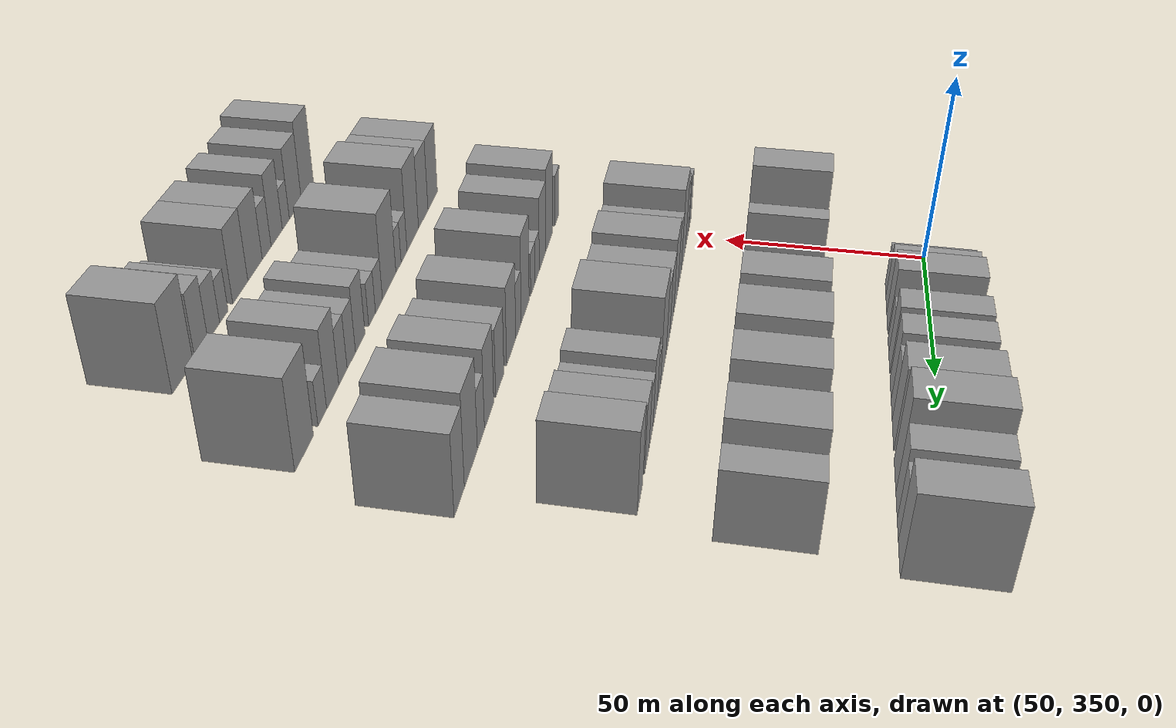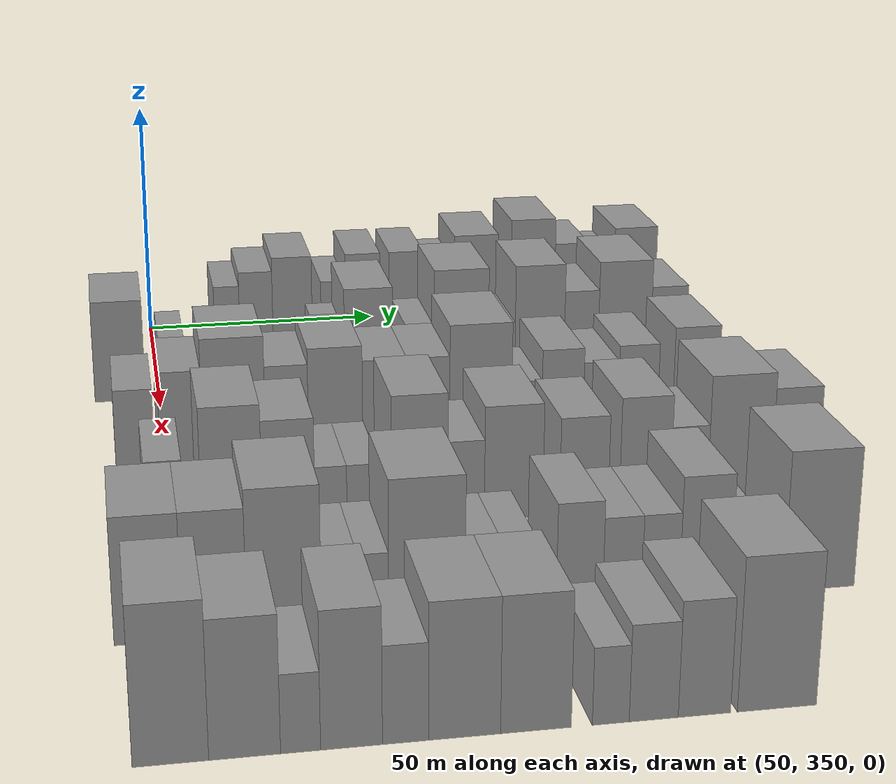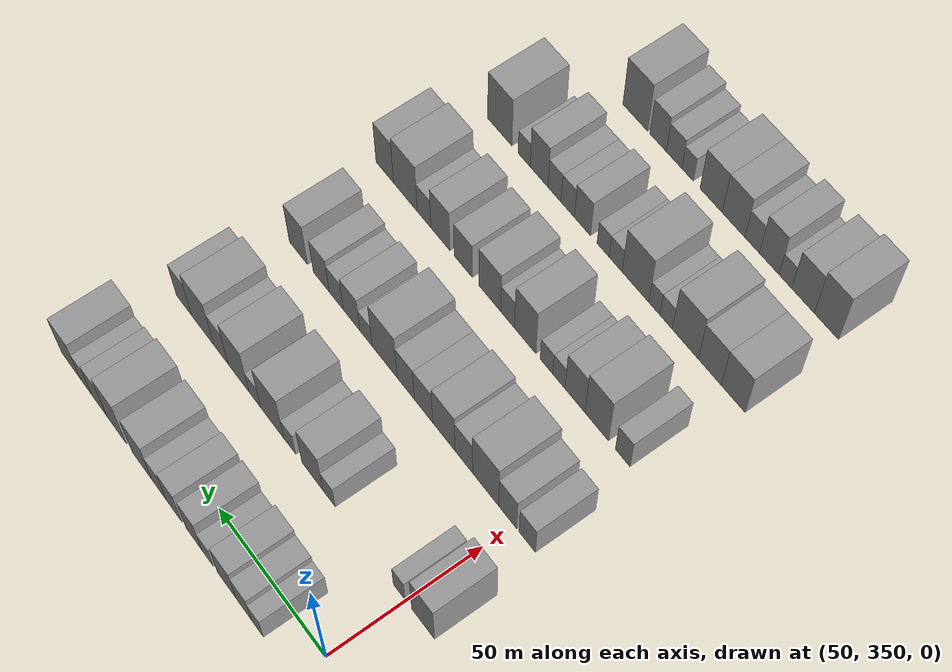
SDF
<sdf version="1.6">
 <world name="default">
  <model name="building_95">
   <static>1</static>
   <pose>50.0000 366.4591 0 0.000000 0.000000 0.000000</pose>
   <link name="link">
    <pose>0 0 6.00 0 0 0</pose>
    <collision name="collision"><geometry><box><size>20.0000 5.5603 12.0000</size></box></geometry></collision>
    <visual name="visual">
     <cast_shadows>0</cast_shadows>
     <geometry><box><size>20.0000 5.5603 12.0000</size></box></geometry>
     <material>
      <script>
       <uri>model://grey_wall/materials/scripts</uri>
       <uri>model://grey_wall/materials/textures</uri>
       <name>vrc/grey_wall</name>
      </script>
     </material>
    </visual>
   </link>
  </model>
  <model name="building_96">
   <static>1</static>
   <pose>50.0000 372.9082 0 0.000000 0.000000 0.000000</pose>
   <link name="link">
    <pose>0 0 7.50 0 0 0</pose>
    <collision name="collision"><geometry><box><size>20.0000 7.3380 15.0000</size></box></geometry></collision>
    <visual name="visual">
     <cast_shadows>0</cast_shadows>
     <geometry><box><size>20.0000 7.3380 15.0000</size></box></geometry>
     <material>
      <script>
       <uri>model://grey_wall/materials/scripts</uri>
       <uri>model://grey_wall/materials/textures</uri>
       <name>vrc/grey_wall</name>
      </script>
     </material>
    </visual>
   </link>
  </model>
  <model name="building_97">
   <static>1</static>
   <pose>50.0000 380.9522 0 0.000000 0.000000 0.000000</pose>
   <link name="link">
    <pose>0 0 9.00 0 0 0</pose>
    <collision name="collision"><geometry><box><size>20.0000 8.7500 18.0000</size></box></geometry></collision>
    <visual name="visual">
     <cast_shadows>0</cast_shadows>
     <geometry><box><size>20.0000 8.7500 18.0000</size></box></geometry>
     <material>
      <script>
       <uri>model://grey_wall/materials/scripts</uri>
       <uri>model://grey_wall/materials/textures</uri>
       <name>vrc/grey_wall</name>
      </script>
     </material>
    </visual>
   </link>
  </model>
  <model name="building_98">
   <static>1</static>
   <pose>50.0000 390.0911 0 0.000000 0.000000 0.000000</pose>
   <link name="link">
    <pose>0 0 6.00 0 0 0</pose>
    <collision name="collision"><geometry><box><size>20.0000 5.5277 12.0000</size></box></geometry></collision>
    <visual name="visual">
     <cast_shadows>0</cast_shadows>
     <geometry><box><size>20.0000 5.5277 12.0000</size></box></geometry>
     <material>
      <script>
       <uri>model://grey_wall/materials/scripts</uri>
       <uri>model://grey_wall/materials/textures</uri>
       <name>vrc/grey_wall</name>
      </script>
     </material>
    </visual>
   </link>
  </model>
  <model name="building_99">
   <static>1</static>
   <pose>50.0000 396.7449 0 0.000000 0.000000 0.000000</pose>
   <link name="link">
    <pose>0 0 9.00 0 0 0</pose>
    <collision name="collision"><geometry><box><size>20.0000 7.7799 18.0000</size></box></geometry></collision>
    <visual name="visual">
     <cast_shadows>0</cast_shadows>
     <geometry><box><size>20.0000 7.7799 18.0000</size></box></geometry>
     <material>
      <script>
       <uri>model://grey_wall/materials/scripts</uri>
       <uri>model://grey_wall/materials/textures</uri>
       <name>vrc/grey_wall</name>
      </script>
     </material>
    </visual>
   </link>
  </model>
  <model name="building_100">
   <static>1</static>
   <pose>50.0000 406.5369 0 0.000000 0.000000 0.000000</pose>
   <link name="link">
    <pose>0 0 9.00 0 0 0</pose>
    <collision name="collision"><geometry><box><size>20.0000 7.8041 18.0000</size></box></geometry></collision>
    <visual name="visual">
     <cast_shadows>0</cast_shadows>
     <geometry><box><size>20.0000 7.8041 18.0000</size></box></geometry>
     <material>
      <script>
       <uri>model://grey_wall/materials/scripts</uri>
       <uri>model://grey_wall/materials/textures</uri>
       <name>vrc/grey_wall</name>
      </script>
     </material>
    </visual>
   </link>
  </model>
  <model name="building_101">
   <static>1</static>
   <pose>50.0000 413.9304 0 0.000000 0.000000 0.000000</pose>
   <link name="link">
    <pose>0 0 7.50 0 0 0</pose>
    <collision name="collision"><geometry><box><size>20.0000 6.9829 15.0000</size></box></geometry></collision>
    <visual name="visual">
     <cast_shadows>0</cast_shadows>
     <geometry><box><size>20.0000 6.9829 15.0000</size></box></geometry>
     <material>
      <script>
       <uri>model://grey_wall/materials/scripts</uri>
       <uri>model://grey_wall/materials/textures</uri>
       <name>vrc/grey_wall</name>
      </script>
     </material>
    </visual>
   </link>
  </model>
  <model name="building_102">
   <static>1</static>
   <pose>50.0000 422.4146 0 0.000000 0.000000 0.000000</pose>
   <link name="link">
    <pose>0 0 10.50 0 0 0</pose>
    <collision name="collision"><geometry><box><size>20.0000 9.9854 21.0000</size></box></geometry></collision>
    <visual name="visual">
     <cast_shadows>0</cast_shadows>
     <geometry><box><size>20.0000 9.9854 21.0000</size></box></geometry>
     <material>
      <script>
       <uri>model://grey_wall/materials/scripts</uri>
       <uri>model://grey_wall/materials/textures</uri>
       <name>vrc/grey_wall</name>
      </script>
     </material>
    </visual>
   </link>
  </model>
  <model name="building_103">
   <static>1</static>
   <pose>50.0000 435.4691 0 0.000000 0.000000 0.000000</pose>
   <link name="link">
    <pose>0 0 12.00 0 0 0</pose>
    <collision name="collision"><geometry><box><size>20.0000 10.1235 24.0000</size></box></geometry></collision>
    <visual name="visual">
     <cast_shadows>0</cast_shadows>
     <geometry><box><size>20.0000 10.1235 24.0000</size></box></geometry>
     <material>
      <script>
       <uri>model://grey_wall/materials/scripts</uri>
       <uri>model://grey_wall/materials/textures</uri>
       <name>vrc/grey_wall</name>
      </script>
     </material>
    </visual>
   </link>
  </model>
  <model name="building_104">
   <static>1</static>
   <pose>50.0000 444.4349 0 0.000000 0.000000 0.000000</pose>
   <link name="link">
    <pose>0 0 9.00 0 0 0</pose>
    <collision name="collision"><geometry><box><size>20.0000 7.8082 18.0000</size></box></geometry></collision>
    <visual name="visual">
     <cast_shadows>0</cast_shadows>
     <geometry><box><size>20.0000 7.8082 18.0000</size></box></geometry>
     <material>
      <script>
       <uri>model://grey_wall/materials/scripts</uri>
       <uri>model://grey_wall/materials/textures</uri>
       <name>vrc/grey_wall</name>
      </script>
     </material>
    </visual>
   </link>
  </model>
  <model name="building_105">
   <static>1</static>
   <pose>50.0000 451.3470 0 0.000000 0.000000 0.000000</pose>
   <link name="link">
    <pose>0 0 7.50 0 0 0</pose>
    <collision name="collision"><geometry><box><size>20.0000 6.0160 15.0000</size></box></geometry></collision>
    <visual name="visual">
     <cast_shadows>0</cast_shadows>
     <geometry><box><size>20.0000 6.0160 15.0000</size></box></geometry>
     <material>
      <script>
       <uri>model://grey_wall/materials/scripts</uri>
       <uri>model://grey_wall/materials/textures</uri>
       <name>vrc/grey_wall</name>
      </script>
     </material>
    </visual>
   </link>
  </model>
  <model name="building_106">
   <static>1</static>
   <pose>50.0000 459.2782 0 0.000000 0.000000 0.000000</pose>
   <link name="link">
    <pose>0 0 10.50 0 0 0</pose>
    <collision name="collision"><geometry><box><size>20.0000 9.8463 21.0000</size></box></geometry></collision>
    <visual name="visual">
     <cast_shadows>0</cast_shadows>
     <geometry><box><size>20.0000 9.8463 21.0000</size></box></geometry>
     <material>
      <script>
       <uri>model://grey_wall/materials/scripts</uri>
       <uri>model://grey_wall/materials/textures</uri>
       <name>vrc/grey_wall</name>
      </script>
     </material>
    </visual>
   </link>
  </model>
  <model name="building_219">
   <static>1</static>
   <pose>85.0000 342.2260 0 0.000000 0.000000 0.000000</pose>
   <link name="link">
    <pose>0 0 10.50 0 0 0</pose>
    <collision name="collision"><geometry><box><size>20.0000 10.0791 21.0000</size></box></geometry></collision>
    <visual name="visual">
     <cast_shadows>0</cast_shadows>
     <geometry><box><size>20.0000 10.0791 21.0000</size></box></geometry>
     <material>
      <script>
       <uri>model://grey_wall/materials/scripts</uri>
       <uri>model://grey_wall/materials/textures</uri>
       <name>vrc/grey_wall</name>
      </script>
     </material>
    </visual>
   </link>
  </model>
  <model name="building_220">
   <static>1</static>
   <pose>85.0000 352.8619 0 0.000000 0.000000 0.000000</pose>
   <link name="link">
    <pose>0 0 6.00 0 0 0</pose>
    <collision name="collision"><geometry><box><size>20.0000 5.1927 12.0000</size></box></geometry></collision>
    <visual name="visual">
     <cast_shadows>0</cast_shadows>
     <geometry><box><size>20.0000 5.1927 12.0000</size></box></geometry>
     <material>
      <script>
       <uri>model://grey_wall/materials/scripts</uri>
       <uri>model://grey_wall/materials/textures</uri>
       <name>vrc/grey_wall</name>
      </script>
     </material>
    </visual>
   </link>
  </model>
  <model name="building_221">
   <static>1</static>
   <pose>85.0000 385.0509 0 0.000000 0.000000 0.000000</pose>
   <link name="link">
    <pose>0 0 6.00 0 0 0</pose>
    <collision name="collision"><geometry><box><size>20.0000 5.7285 12.0000</size></box></geometry></collision>
    <visual name="visual">
     <cast_shadows>0</cast_shadows>
     <geometry><box><size>20.0000 5.7285 12.0000</size></box></geometry>
     <material>
      <script>
       <uri>model://grey_wall/materials/scripts</uri>
       <uri>model://grey_wall/materials/textures</uri>
       <name>vrc/grey_wall</name>
      </script>
     </material>
    </visual>
   </link>
  </model>
  <model name="building_222">
   <static>1</static>
   <pose>85.0000 392.8998 0 0.000000 0.000000 0.000000</pose>
   <link name="link">
    <pose>0 0 10.50 0 0 0</pose>
    <collision name="collision"><geometry><box><size>20.0000 9.9693 21.0000</size></box></geometry></collision>
    <visual name="visual">
     <cast_shadows>0</cast_shadows>
     <geometry><box><size>20.0000 9.9693 21.0000</size></box></geometry>
     <material>
      <script>
       <uri>model://grey_wall/materials/scripts</uri>
       <uri>model://grey_wall/materials/textures</uri>
       <name>vrc/grey_wall</name>
      </script>
     </material>
    </visual>
   </link>
  </model>
  <model name="building_223">
   <static>1</static>
   <pose>85.0000 403.7340 0 0.000000 0.000000 0.000000</pose>
   <link name="link">
    <pose>0 0 6.00 0 0 0</pose>
    <collision name="collision"><geometry><box><size>20.0000 5.6991 12.0000</size></box></geometry></collision>
    <visual name="visual">
     <cast_shadows>0</cast_shadows>
     <geometry><box><size>20.0000 5.6991 12.0000</size></box></geometry>
     <material>
      <script>
       <uri>model://grey_wall/materials/scripts</uri>
       <uri>model://grey_wall/materials/textures</uri>
       <name>vrc/grey_wall</name>
      </script>
     </material>
    </visual>
   </link>
  </model>
  <model name="building_224">
   <static>1</static>
   <pose>85.0000 412.2880 0 0.000000 0.000000 0.000000</pose>
   <link name="link">
    <pose>0 0 12.00 0 0 0</pose>
    <collision name="collision"><geometry><box><size>20.0000 11.4088 24.0000</size></box></geometry></collision>
    <visual name="visual">
     <cast_shadows>0</cast_shadows>
     <geometry><box><size>20.0000 11.4088 24.0000</size></box></geometry>
     <material>
      <script>
       <uri>model://grey_wall/materials/scripts</uri>
       <uri>model://grey_wall/materials/textures</uri>
       <name>vrc/grey_wall</name>
      </script>
     </material>
    </visual>
   </link>
  </model>
  <model name="building_225">
   <static>1</static>
   <pose>85.0000 420.8090 0 0.000000 0.000000 0.000000</pose>
   <link name="link">
    <pose>0 0 6.00 0 0 0</pose>
    <collision name="collision"><geometry><box><size>20.0000 5.6333 12.0000</size></box></geometry></collision>
    <visual name="visual">
     <cast_shadows>0</cast_shadows>
     <geometry><box><size>20.0000 5.6333 12.0000</size></box></geometry>
     <material>
      <script>
       <uri>model://grey_wall/materials/scripts</uri>
       <uri>model://grey_wall/materials/textures</uri>
       <name>vrc/grey_wall</name>
      </script>
     </material>
    </visual>
   </link>
  </model>
  <model name="building_226">
   <static>1</static>
   <pose>85.0000 428.8938 0 0.000000 0.000000 0.000000</pose>
   <link name="link">
    <pose>0 0 12.00 0 0 0</pose>
    <collision name="collision"><geometry><box><size>20.0000 10.5362 24.0000</size></box></geometry></collision>
    <visual name="visual">
     <cast_shadows>0</cast_shadows>
     <geometry><box><size>20.0000 10.5362 24.0000</size></box></geometry>
     <material>
      <script>
       <uri>model://grey_wall/materials/scripts</uri>
       <uri>model://grey_wall/materials/textures</uri>
       <name>vrc/grey_wall</name>
      </script>
     </material>
    </visual>
   </link>
  </model>
  <model name="building_227">
   <static>1</static>
   <pose>85.0000 437.8114 0 0.000000 0.000000 0.000000</pose>
   <link name="link">
    <pose>0 0 9.00 0 0 0</pose>
    <collision name="collision"><geometry><box><size>20.0000 7.2992 18.0000</size></box></geometry></collision>
    <visual name="visual">
     <cast_shadows>0</cast_shadows>
     <geometry><box><size>20.0000 7.2992 18.0000</size></box></geometry>
     <material>
      <script>
       <uri>model://grey_wall/materials/scripts</uri>
       <uri>model://grey_wall/materials/textures</uri>
       <name>vrc/grey_wall</name>
      </script>
     </material>
    </visual>
   </link>
  </model>
  <model name="building_228">
   <static>1</static>
   <pose>85.0000 447.1534 0 0.000000 0.000000 0.000000</pose>
   <link name="link">
    <pose>0 0 12.00 0 0 0</pose>
    <collision name="collision"><geometry><box><size>20.0000 11.3847 24.0000</size></box></geometry></collision>
    <visual name="visual">
     <cast_shadows>0</cast_shadows>
     <geometry><box><size>20.0000 11.3847 24.0000</size></box></geometry>
     <material>
      <script>
       <uri>model://grey_wall/materials/scripts</uri>
       <uri>model://grey_wall/materials/textures</uri>
       <name>vrc/grey_wall</name>
      </script>
     </material>
    </visual>
   </link>
  </model>
  <model name="building_229">
   <static>1</static>
   <pose>85.0000 456.7646 0 0.000000 0.000000 0.000000</pose>
   <link name="link">
    <pose>0 0 9.00 0 0 0</pose>
    <collision name="collision"><geometry><box><size>20.0000 7.8378 18.0000</size></box></geometry></collision>
    <visual name="visual">
     <cast_shadows>0</cast_shadows>
     <geometry><box><size>20.0000 7.8378 18.0000</size></box></geometry>
     <material>
      <script>
       <uri>model://grey_wall/materials/scripts</uri>
       <uri>model://grey_wall/materials/textures</uri>
       <name>vrc/grey_wall</name>
      </script>
     </material>
    </visual>
   </link>
  </model>
  <model name="building_340">
   <static>1</static>
   <pose>120.0000 344.1372 0 0.000000 0.000000 0.000000</pose>
   <link name="link">
    <pose>0 0 7.50 0 0 0</pose>
    <collision name="collision"><geometry><box><size>20.0000 7.1454 15.0000</size></box></geometry></collision>
    <visual name="visual">
     <cast_shadows>0</cast_shadows>
     <geometry><box><size>20.0000 7.1454 15.0000</size></box></geometry>
     <material>
      <script>
       <uri>model://grey_wall/materials/scripts</uri>
       <uri>model://grey_wall/materials/textures</uri>
       <name>vrc/grey_wall</name>
      </script>
     </material>
    </visual>
   </link>
  </model>
  <model name="building_341">
   <static>1</static>
   <pose>120.0000 352.6727 0 0.000000 0.000000 0.000000</pose>
   <link name="link">
    <pose>0 0 9.00 0 0 0</pose>
    <collision name="collision"><geometry><box><size>20.0000 7.9255 18.0000</size></box></geometry></collision>
    <visual name="visual">
     <cast_shadows>0</cast_shadows>
     <geometry><box><size>20.0000 7.9255 18.0000</size></box></geometry>
     <material>
      <script>
       <uri>model://grey_wall/materials/scripts</uri>
       <uri>model://grey_wall/materials/textures</uri>
       <name>vrc/grey_wall</name>
      </script>
     </material>
    </visual>
   </link>
  </model>
  <model name="building_342">
   <static>1</static>
   <pose>120.0000 362.4865 0 0.000000 0.000000 0.000000</pose>
   <link name="link">
    <pose>0 0 12.00 0 0 0</pose>
    <collision name="collision"><geometry><box><size>20.0000 11.7022 24.0000</size></box></geometry></collision>
    <visual name="visual">
     <cast_shadows>0</cast_shadows>
     <geometry><box><size>20.0000 11.7022 24.0000</size></box></geometry>
     <material>
      <script>
       <uri>model://grey_wall/materials/scripts</uri>
       <uri>model://grey_wall/materials/textures</uri>
       <name>vrc/grey_wall</name>
      </script>
     </material>
    </visual>
   </link>
  </model>
  <model name="building_343">
   <static>1</static>
   <pose>120.0000 372.3522 0 0.000000 0.000000 0.000000</pose>
   <link name="link">
    <pose>0 0 9.00 0 0 0</pose>
    <collision name="collision"><geometry><box><size>20.0000 8.0290 18.0000</size></box></geometry></collision>
    <visual name="visual">
     <cast_shadows>0</cast_shadows>
     <geometry><box><size>20.0000 8.0290 18.0000</size></box></geometry>
     <material>
      <script>
       <uri>model://grey_wall/materials/scripts</uri>
       <uri>model://grey_wall/materials/textures</uri>
       <name>vrc/grey_wall</name>
      </script>
     </material>
    </visual>
   </link>
  </model>
  <model name="building_344">
   <static>1</static>
   <pose>120.0000 381.4960 0 0.000000 0.000000 0.000000</pose>
   <link name="link">
    <pose>0 0 10.50 0 0 0</pose>
    <collision name="collision"><geometry><box><size>20.0000 10.2587 21.0000</size></box></geometry></collision>
    <visual name="visual">
     <cast_shadows>0</cast_shadows>
     <geometry><box><size>20.0000 10.2587 21.0000</size></box></geometry>
     <material>
      <script>
       <uri>model://grey_wall/materials/scripts</uri>
       <uri>model://grey_wall/materials/textures</uri>
       <name>vrc/grey_wall</name>
      </script>
     </material>
    </visual>
   </link>
  </model>
  <model name="building_345">
   <static>1</static>
   <pose>120.0000 390.8699 0 0.000000 0.000000 0.000000</pose>
   <link name="link">
    <pose>0 0 9.00 0 0 0</pose>
    <collision name="collision"><geometry><box><size>20.0000 8.4892 18.0000</size></box></geometry></collision>
    <visual name="visual">
     <cast_shadows>0</cast_shadows>
     <geometry><box><size>20.0000 8.4892 18.0000</size></box></geometry>
     <material>
      <script>
       <uri>model://grey_wall/materials/scripts</uri>
       <uri>model://grey_wall/materials/textures</uri>
       <name>vrc/grey_wall</name>
      </script>
     </material>
    </visual>
   </link>
  </model>
  <model name="building_346">
   <static>1</static>
   <pose>120.0000 399.1827 0 0.000000 0.000000 0.000000</pose>
   <link name="link">
    <pose>0 0 9.00 0 0 0</pose>
    <collision name="collision"><geometry><box><size>20.0000 8.1363 18.0000</size></box></geometry></collision>
    <visual name="visual">
     <cast_shadows>0</cast_shadows>
     <geometry><box><size>20.0000 8.1363 18.0000</size></box></geometry>
     <material>
      <script>
       <uri>model://grey_wall/materials/scripts</uri>
       <uri>model://grey_wall/materials/textures</uri>
       <name>vrc/grey_wall</name>
      </script>
     </material>
    </visual>
   </link>
  </model>
  <model name="building_347">
   <static>1</static>
   <pose>120.0000 409.2458 0 0.000000 0.000000 0.000000</pose>
   <link name="link">
    <pose>0 0 12.00 0 0 0</pose>
    <collision name="collision"><geometry><box><size>20.0000 11.9900 24.0000</size></box></geometry></collision>
    <visual name="visual">
     <cast_shadows>0</cast_shadows>
     <geometry><box><size>20.0000 11.9900 24.0000</size></box></geometry>
     <material>
      <script>
       <uri>model://grey_wall/materials/scripts</uri>
       <uri>model://grey_wall/materials/textures</uri>
       <name>vrc/grey_wall</name>
      </script>
     </material>
    </visual>
   </link>
  </model>
  <model name="building_348">
   <static>1</static>
   <pose>120.0000 418.1834 0 0.000000 0.000000 0.000000</pose>
   <link name="link">
    <pose>0 0 6.00 0 0 0</pose>
    <collision name="collision"><geometry><box><size>20.0000 5.8854 12.0000</size></box></geometry></collision>
    <visual name="visual">
     <cast_shadows>0</cast_shadows>
     <geometry><box><size>20.0000 5.8854 12.0000</size></box></geometry>
     <material>
      <script>
       <uri>model://grey_wall/materials/scripts</uri>
       <uri>model://grey_wall/materials/textures</uri>
       <name>vrc/grey_wall</name>
      </script>
     </material>
    </visual>
   </link>
  </model>
  <model name="building_349">
   <static>1</static>
   <pose>120.0000 425.2033 0 0.000000 0.000000 0.000000</pose>
   <link name="link">
    <pose>0 0 9.00 0 0 0</pose>
    <collision name="collision"><geometry><box><size>20.0000 8.1543 18.0000</size></box></geometry></collision>
    <visual name="visual">
     <cast_shadows>0</cast_shadows>
     <geometry><box><size>20.0000 8.1543 18.0000</size></box></geometry>
     <material>
      <script>
       <uri>model://grey_wall/materials/scripts</uri>
       <uri>model://grey_wall/materials/textures</uri>
       <name>vrc/grey_wall</name>
      </script>
     </material>
    </visual>
   </link>
  </model>
  <model name="building_350">
   <static>1</static>
   <pose>120.0000 432.7325 0 0.000000 0.000000 0.000000</pose>
   <link name="link">
    <pose>0 0 7.50 0 0 0</pose>
    <collision name="collision"><geometry><box><size>20.0000 6.9041 15.0000</size></box></geometry></collision>
    <visual name="visual">
     <cast_shadows>0</cast_shadows>
     <geometry><box><size>20.0000 6.9041 15.0000</size></box></geometry>
     <material>
      <script>
       <uri>model://grey_wall/materials/scripts</uri>
       <uri>model://grey_wall/materials/textures</uri>
       <name>vrc/grey_wall</name>
      </script>
     </material>
    </visual>
   </link>
  </model>
  <model name="building_351">
   <static>1</static>
   <pose>120.0000 440.1216 0 0.000000 0.000000 0.000000</pose>
   <link name="link">
    <pose>0 0 9.00 0 0 0</pose>
    <collision name="collision"><geometry><box><size>20.0000 7.8741 18.0000</size></box></geometry></collision>
    <visual name="visual">
     <cast_shadows>0</cast_shadows>
     <geometry><box><size>20.0000 7.8741 18.0000</size></box></geometry>
     <material>
      <script>
       <uri>model://grey_wall/materials/scripts</uri>
       <uri>model://grey_wall/materials/textures</uri>
       <name>vrc/grey_wall</name>
      </script>
     </material>
    </visual>
   </link>
  </model>
  <model name="building_352">
   <static>1</static>
   <pose>120.0000 451.6036 0 0.000000 0.000000 0.000000</pose>
   <link name="link">
    <pose>0 0 10.50 0 0 0</pose>
    <collision name="collision"><geometry><box><size>20.0000 9.0899 21.0000</size></box></geometry></collision>
    <visual name="visual">
     <cast_shadows>0</cast_shadows>
     <geometry><box><size>20.0000 9.0899 21.0000</size></box></geometry>
     <material>
      <script>
       <uri>model://grey_wall/materials/scripts</uri>
       <uri>model://grey_wall/materials/textures</uri>
       <name>vrc/grey_wall</name>
      </script>
     </material>
    </visual>
   </link>
  </model>
  <model name="building_463">
   <static>1</static>
   <pose>155.0000 348.0108 0 0.000000 0.000000 0.000000</pose>
   <link name="link">
    <pose>0 0 7.50 0 0 0</pose>
    <collision name="collision"><geometry><box><size>20.0000 6.3370 15.0000</size></box></geometry></collision>
    <visual name="visual">
     <cast_shadows>0</cast_shadows>
     <geometry><box><size>20.0000 6.3370 15.0000</size></box></geometry>
     <material>
      <script>
       <uri>model://grey_wall/materials/scripts</uri>
       <uri>model://grey_wall/materials/textures</uri>
       <name>vrc/grey_wall</name>
      </script>
     </material>
    </visual>
   </link>
  </model>
  <model name="building_464">
   <static>1</static>
   <pose>155.0000 359.3113 0 0.000000 0.000000 0.000000</pose>
   <link name="link">
    <pose>0 0 12.00 0 0 0</pose>
    <collision name="collision"><geometry><box><size>20.0000 10.2641 24.0000</size></box></geometry></collision>
    <visual name="visual">
     <cast_shadows>0</cast_shadows>
     <geometry><box><size>20.0000 10.2641 24.0000</size></box></geometry>
     <material>
      <script>
       <uri>model://grey_wall/materials/scripts</uri>
       <uri>model://grey_wall/materials/textures</uri>
       <name>vrc/grey_wall</name>
      </script>
     </material>
    </visual>
   </link>
  </model>
  <model name="building_465">
   <static>1</static>
   <pose>155.0000 368.9170 0 0.000000 0.000000 0.000000</pose>
   <link name="link">
    <pose>0 0 10.50 0 0 0</pose>
    <collision name="collision"><geometry><box><size>20.0000 8.9473 21.0000</size></box></geometry></collision>
    <visual name="visual">
     <cast_shadows>0</cast_shadows>
     <geometry><box><size>20.0000 8.9473 21.0000</size></box></geometry>
     <material>
      <script>
       <uri>model://grey_wall/materials/scripts</uri>
       <uri>model://grey_wall/materials/textures</uri>
       <name>vrc/grey_wall</name>
      </script>
     </material>
    </visual>
   </link>
  </model>
  <model name="building_466">
   <static>1</static>
   <pose>155.0000 376.1301 0 0.000000 0.000000 0.000000</pose>
   <link name="link">
    <pose>0 0 6.00 0 0 0</pose>
    <collision name="collision"><geometry><box><size>20.0000 5.4789 12.0000</size></box></geometry></collision>
    <visual name="visual">
     <cast_shadows>0</cast_shadows>
     <geometry><box><size>20.0000 5.4789 12.0000</size></box></geometry>
     <material>
      <script>
       <uri>model://grey_wall/materials/scripts</uri>
       <uri>model://grey_wall/materials/textures</uri>
       <name>vrc/grey_wall</name>
      </script>
     </material>
    </visual>
   </link>
  </model>
  <model name="building_467">
   <static>1</static>
   <pose>155.0000 381.7241 0 0.000000 0.000000 0.000000</pose>
   <link name="link">
    <pose>0 0 6.00 0 0 0</pose>
    <collision name="collision"><geometry><box><size>20.0000 5.7091 12.0000</size></box></geometry></collision>
    <visual name="visual">
     <cast_shadows>0</cast_shadows>
     <geometry><box><size>20.0000 5.7091 12.0000</size></box></geometry>
     <material>
      <script>
       <uri>model://grey_wall/materials/scripts</uri>
       <uri>model://grey_wall/materials/textures</uri>
       <name>vrc/grey_wall</name>
      </script>
     </material>
    </visual>
   </link>
  </model>
  <model name="building_468">
   <static>1</static>
   <pose>155.0000 391.4605 0 0.000000 0.000000 0.000000</pose>
   <link name="link">
    <pose>0 0 12.00 0 0 0</pose>
    <collision name="collision"><geometry><box><size>20.0000 9.7637 24.0000</size></box></geometry></collision>
    <visual name="visual">
     <cast_shadows>0</cast_shadows>
     <geometry><box><size>20.0000 9.7637 24.0000</size></box></geometry>
     <material>
      <script>
       <uri>model://grey_wall/materials/scripts</uri>
       <uri>model://grey_wall/materials/textures</uri>
       <name>vrc/grey_wall</name>
      </script>
     </material>
    </visual>
   </link>
  </model>
  <model name="building_469">
   <static>1</static>
   <pose>155.0000 399.5577 0 0.000000 0.000000 0.000000</pose>
   <link name="link">
    <pose>0 0 7.50 0 0 0</pose>
    <collision name="collision"><geometry><box><size>20.0000 6.4308 15.0000</size></box></geometry></collision>
    <visual name="visual">
     <cast_shadows>0</cast_shadows>
     <geometry><box><size>20.0000 6.4308 15.0000</size></box></geometry>
     <material>
      <script>
       <uri>model://grey_wall/materials/scripts</uri>
       <uri>model://grey_wall/materials/textures</uri>
       <name>vrc/grey_wall</name>
      </script>
     </material>
    </visual>
   </link>
  </model>
  <model name="building_470">
   <static>1</static>
   <pose>155.0000 407.9489 0 0.000000 0.000000 0.000000</pose>
   <link name="link">
    <pose>0 0 10.50 0 0 0</pose>
    <collision name="collision"><geometry><box><size>20.0000 10.3515 21.0000</size></box></geometry></collision>
    <visual name="visual">
     <cast_shadows>0</cast_shadows>
     <geometry><box><size>20.0000 10.3515 21.0000</size></box></geometry>
     <material>
      <script>
       <uri>model://grey_wall/materials/scripts</uri>
       <uri>model://grey_wall/materials/textures</uri>
       <name>vrc/grey_wall</name>
      </script>
     </material>
    </visual>
   </link>
  </model>
  <model name="building_471">
   <static>1</static>
   <pose>155.0000 420.4796 0 0.000000 0.000000 0.000000</pose>
   <link name="link">
    <pose>0 0 9.00 0 0 0</pose>
    <collision name="collision"><geometry><box><size>20.0000 8.7100 18.0000</size></box></geometry></collision>
    <visual name="visual">
     <cast_shadows>0</cast_shadows>
     <geometry><box><size>20.0000 8.7100 18.0000</size></box></geometry>
     <material>
      <script>
       <uri>model://grey_wall/materials/scripts</uri>
       <uri>model://grey_wall/materials/textures</uri>
       <name>vrc/grey_wall</name>
      </script>
     </material>
    </visual>
   </link>
  </model>
  <model name="building_472">
   <static>1</static>
   <pose>155.0000 431.4518 0 0.000000 0.000000 0.000000</pose>
   <link name="link">
    <pose>0 0 10.50 0 0 0</pose>
    <collision name="collision"><geometry><box><size>20.0000 9.2345 21.0000</size></box></geometry></collision>
    <visual name="visual">
     <cast_shadows>0</cast_shadows>
     <geometry><box><size>20.0000 9.2345 21.0000</size></box></geometry>
     <material>
      <script>
       <uri>model://grey_wall/materials/scripts</uri>
       <uri>model://grey_wall/materials/textures</uri>
       <name>vrc/grey_wall</name>
      </script>
     </material>
    </visual>
   </link>
  </model>
  <model name="building_473">
   <static>1</static>
   <pose>155.0000 439.4439 0 0.000000 0.000000 0.000000</pose>
   <link name="link">
    <pose>0 0 7.50 0 0 0</pose>
    <collision name="collision"><geometry><box><size>20.0000 6.7495 15.0000</size></box></geometry></collision>
    <visual name="visual">
     <cast_shadows>0</cast_shadows>
     <geometry><box><size>20.0000 6.7495 15.0000</size></box></geometry>
     <material>
      <script>
       <uri>model://grey_wall/materials/scripts</uri>
       <uri>model://grey_wall/materials/textures</uri>
       <name>vrc/grey_wall</name>
      </script>
     </material>
    </visual>
   </link>
  </model>
  <model name="building_474">
   <static>1</static>
   <pose>155.0000 448.6864 0 0.000000 0.000000 0.000000</pose>
   <link name="link">
    <pose>0 0 12.00 0 0 0</pose>
    <collision name="collision"><geometry><box><size>20.0000 11.7356 24.0000</size></box></geometry></collision>
    <visual name="visual">
     <cast_shadows>0</cast_shadows>
     <geometry><box><size>20.0000 11.7356 24.0000</size></box></geometry>
     <material>
      <script>
       <uri>model://grey_wall/materials/scripts</uri>
       <uri>model://grey_wall/materials/textures</uri>
       <name>vrc/grey_wall</name>
      </script>
     </material>
    </visual>
   </link>
  </model>
  <model name="building_475">
   <static>1</static>
   <pose>155.0000 458.9106 0 0.000000 0.000000 0.000000</pose>
   <link name="link">
    <pose>0 0 10.50 0 0 0</pose>
    <collision name="collision"><geometry><box><size>20.0000 8.7128 21.0000</size></box></geometry></collision>
    <visual name="visual">
     <cast_shadows>0</cast_shadows>
     <geometry><box><size>20.0000 8.7128 21.0000</size></box></geometry>
     <material>
      <script>
       <uri>model://grey_wall/materials/scripts</uri>
       <uri>model://grey_wall/materials/textures</uri>
       <name>vrc/grey_wall</name>
      </script>
     </material>
    </visual>
   </link>
  </model>
  <model name="building_591">
   <static>1</static>
   <pose>190.0000 343.8162 0 0.000000 0.000000 0.000000</pose>
   <link name="link">
    <pose>0 0 10.50 0 0 0</pose>
    <collision name="collision"><geometry><box><size>20.0000 10.1909 21.0000</size></box></geometry></collision>
    <visual name="visual">
     <cast_shadows>0</cast_shadows>
     <geometry><box><size>20.0000 10.1909 21.0000</size></box></geometry>
     <material>
      <script>
       <uri>model://grey_wall/materials/scripts</uri>
       <uri>model://grey_wall/materials/textures</uri>
       <name>vrc/grey_wall</name>
      </script>
     </material>
    </visual>
   </link>
  </model>
  <model name="building_592">
   <static>1</static>
   <pose>190.0000 353.8245 0 0.000000 0.000000 0.000000</pose>
   <link name="link">
    <pose>0 0 10.50 0 0 0</pose>
    <collision name="collision"><geometry><box><size>20.0000 9.8256 21.0000</size></box></geometry></collision>
    <visual name="visual">
     <cast_shadows>0</cast_shadows>
     <geometry><box><size>20.0000 9.8256 21.0000</size></box></geometry>
     <material>
      <script>
       <uri>model://grey_wall/materials/scripts</uri>
       <uri>model://grey_wall/materials/textures</uri>
       <name>vrc/grey_wall</name>
      </script>
     </material>
    </visual>
   </link>
  </model>
  <model name="building_593">
   <static>1</static>
   <pose>190.0000 364.4486 0 0.000000 0.000000 0.000000</pose>
   <link name="link">
    <pose>0 0 12.00 0 0 0</pose>
    <collision name="collision"><geometry><box><size>20.0000 11.4225 24.0000</size></box></geometry></collision>
    <visual name="visual">
     <cast_shadows>0</cast_shadows>
     <geometry><box><size>20.0000 11.4225 24.0000</size></box></geometry>
     <material>
      <script>
       <uri>model://grey_wall/materials/scripts</uri>
       <uri>model://grey_wall/materials/textures</uri>
       <name>vrc/grey_wall</name>
      </script>
     </material>
    </visual>
   </link>
  </model>
  <model name="building_594">
   <static>1</static>
   <pose>190.0000 372.9548 0 0.000000 0.000000 0.000000</pose>
   <link name="link">
    <pose>0 0 6.00 0 0 0</pose>
    <collision name="collision"><geometry><box><size>20.0000 5.5899 12.0000</size></box></geometry></collision>
    <visual name="visual">
     <cast_shadows>0</cast_shadows>
     <geometry><box><size>20.0000 5.5899 12.0000</size></box></geometry>
     <material>
      <script>
       <uri>model://grey_wall/materials/scripts</uri>
       <uri>model://grey_wall/materials/textures</uri>
       <name>vrc/grey_wall</name>
      </script>
     </material>
    </visual>
   </link>
  </model>
  <model name="building_595">
   <static>1</static>
   <pose>190.0000 378.1574 0 0.000000 0.000000 0.000000</pose>
   <link name="link">
    <pose>0 0 6.00 0 0 0</pose>
    <collision name="collision"><geometry><box><size>20.0000 4.8153 12.0000</size></box></geometry></collision>
    <visual name="visual">
     <cast_shadows>0</cast_shadows>
     <geometry><box><size>20.0000 4.8153 12.0000</size></box></geometry>
     <material>
      <script>
       <uri>model://grey_wall/materials/scripts</uri>
       <uri>model://grey_wall/materials/textures</uri>
       <name>vrc/grey_wall</name>
      </script>
     </material>
    </visual>
   </link>
  </model>
  <model name="building_596">
   <static>1</static>
   <pose>190.0000 386.5609 0 0.000000 0.000000 0.000000</pose>
   <link name="link">
    <pose>0 0 12.00 0 0 0</pose>
    <collision name="collision"><geometry><box><size>20.0000 11.9917 24.0000</size></box></geometry></collision>
    <visual name="visual">
     <cast_shadows>0</cast_shadows>
     <geometry><box><size>20.0000 11.9917 24.0000</size></box></geometry>
     <material>
      <script>
       <uri>model://grey_wall/materials/scripts</uri>
       <uri>model://grey_wall/materials/textures</uri>
       <name>vrc/grey_wall</name>
      </script>
     </material>
    </visual>
   </link>
  </model>
  <model name="building_597">
   <static>1</static>
   <pose>190.0000 395.5101 0 0.000000 0.000000 0.000000</pose>
   <link name="link">
    <pose>0 0 6.00 0 0 0</pose>
    <collision name="collision"><geometry><box><size>20.0000 5.9066 12.0000</size></box></geometry></collision>
    <visual name="visual">
     <cast_shadows>0</cast_shadows>
     <geometry><box><size>20.0000 5.9066 12.0000</size></box></geometry>
     <material>
      <script>
       <uri>model://grey_wall/materials/scripts</uri>
       <uri>model://grey_wall/materials/textures</uri>
       <name>vrc/grey_wall</name>
      </script>
     </material>
    </visual>
   </link>
  </model>
  <model name="building_598">
   <static>1</static>
   <pose>190.0000 401.2446 0 0.000000 0.000000 0.000000</pose>
   <link name="link">
    <pose>0 0 6.00 0 0 0</pose>
    <collision name="collision"><geometry><box><size>20.0000 5.5624 12.0000</size></box></geometry></collision>
    <visual name="visual">
     <cast_shadows>0</cast_shadows>
     <geometry><box><size>20.0000 5.5624 12.0000</size></box></geometry>
     <material>
      <script>
       <uri>model://grey_wall/materials/scripts</uri>
       <uri>model://grey_wall/materials/textures</uri>
       <name>vrc/grey_wall</name>
      </script>
     </material>
    </visual>
   </link>
  </model>
  <model name="building_599">
   <static>1</static>
   <pose>190.0000 410.7658 0 0.000000 0.000000 0.000000</pose>
   <link name="link">
    <pose>0 0 9.00 0 0 0</pose>
    <collision name="collision"><geometry><box><size>20.0000 7.4801 18.0000</size></box></geometry></collision>
    <visual name="visual">
     <cast_shadows>0</cast_shadows>
     <geometry><box><size>20.0000 7.4801 18.0000</size></box></geometry>
     <material>
      <script>
       <uri>model://grey_wall/materials/scripts</uri>
       <uri>model://grey_wall/materials/textures</uri>
       <name>vrc/grey_wall</name>
      </script>
     </material>
    </visual>
   </link>
  </model>
  <model name="building_600">
   <static>1</static>
   <pose>190.0000 417.6758 0 0.000000 0.000000 0.000000</pose>
   <link name="link">
    <pose>0 0 7.50 0 0 0</pose>
    <collision name="collision"><geometry><box><size>20.0000 6.3399 15.0000</size></box></geometry></collision>
    <visual name="visual">
     <cast_shadows>0</cast_shadows>
     <geometry><box><size>20.0000 6.3399 15.0000</size></box></geometry>
     <material>
      <script>
       <uri>model://grey_wall/materials/scripts</uri>
       <uri>model://grey_wall/materials/textures</uri>
       <name>vrc/grey_wall</name>
      </script>
     </material>
    </visual>
   </link>
  </model>
  <model name="building_601">
   <static>1</static>
   <pose>190.0000 423.9115 0 0.000000 0.000000 0.000000</pose>
   <link name="link">
    <pose>0 0 7.50 0 0 0</pose>
    <collision name="collision"><geometry><box><size>20.0000 6.1315 15.0000</size></box></geometry></collision>
    <visual name="visual">
     <cast_shadows>0</cast_shadows>
     <geometry><box><size>20.0000 6.1315 15.0000</size></box></geometry>
     <material>
      <script>
       <uri>model://grey_wall/materials/scripts</uri>
       <uri>model://grey_wall/materials/textures</uri>
       <name>vrc/grey_wall</name>
      </script>
     </material>
    </visual>
   </link>
  </model>
  <model name="building_602">
   <static>1</static>
   <pose>190.0000 431.2294 0 0.000000 0.000000 0.000000</pose>
   <link name="link">
    <pose>0 0 10.50 0 0 0</pose>
    <collision name="collision"><geometry><box><size>20.0000 8.5043 21.0000</size></box></geometry></collision>
    <visual name="visual">
     <cast_shadows>0</cast_shadows>
     <geometry><box><size>20.0000 8.5043 21.0000</size></box></geometry>
     <material>
      <script>
       <uri>model://grey_wall/materials/scripts</uri>
       <uri>model://grey_wall/materials/textures</uri>
       <name>vrc/grey_wall</name>
      </script>
     </material>
    </visual>
   </link>
  </model>
  <model name="building_603">
   <static>1</static>
   <pose>190.0000 438.3949 0 0.000000 0.000000 0.000000</pose>
   <link name="link">
    <pose>0 0 6.00 0 0 0</pose>
    <collision name="collision"><geometry><box><size>20.0000 5.8267 12.0000</size></box></geometry></collision>
    <visual name="visual">
     <cast_shadows>0</cast_shadows>
     <geometry><box><size>20.0000 5.8267 12.0000</size></box></geometry>
     <material>
      <script>
       <uri>model://grey_wall/materials/scripts</uri>
       <uri>model://grey_wall/materials/textures</uri>
       <name>vrc/grey_wall</name>
      </script>
     </material>
    </visual>
   </link>
  </model>
  <model name="building_604">
   <static>1</static>
   <pose>190.0000 450.2171 0 0.000000 0.000000 0.000000</pose>
   <link name="link">
    <pose>0 0 12.00 0 0 0</pose>
    <collision name="collision"><geometry><box><size>20.0000 11.8179 24.0000</size></box></geometry></collision>
    <visual name="visual">
     <cast_shadows>0</cast_shadows>
     <geometry><box><size>20.0000 11.8179 24.0000</size></box></geometry>
     <material>
      <script>
       <uri>model://grey_wall/materials/scripts</uri>
       <uri>model://grey_wall/materials/textures</uri>
       <name>vrc/grey_wall</name>
      </script>
     </material>
    </visual>
   </link>
  </model>
  <model name="building_722">
   <static>1</static>
   <pose>225.0000 345.4478 0 0.000000 0.000000 0.000000</pose>
   <link name="link">
    <pose>0 0 12.00 0 0 0</pose>
    <collision name="collision"><geometry><box><size>20.0000 10.2095 24.0000</size></box></geometry></collision>
    <visual name="visual">
     <cast_shadows>0</cast_shadows>
     <geometry><box><size>20.0000 10.2095 24.0000</size></box></geometry>
     <material>
      <script>
       <uri>model://grey_wall/materials/scripts</uri>
       <uri>model://grey_wall/materials/textures</uri>
       <name>vrc/grey_wall</name>
      </script>
     </material>
    </visual>
   </link>
  </model>
  <model name="building_723">
   <static>1</static>
   <pose>225.0000 355.3993 0 0.000000 0.000000 0.000000</pose>
   <link name="link">
    <pose>0 0 10.50 0 0 0</pose>
    <collision name="collision"><geometry><box><size>20.0000 9.6934 21.0000</size></box></geometry></collision>
    <visual name="visual">
     <cast_shadows>0</cast_shadows>
     <geometry><box><size>20.0000 9.6934 21.0000</size></box></geometry>
     <material>
      <script>
       <uri>model://grey_wall/materials/scripts</uri>
       <uri>model://grey_wall/materials/textures</uri>
       <name>vrc/grey_wall</name>
      </script>
     </material>
    </visual>
   </link>
  </model>
  <model name="building_724">
   <static>1</static>
   <pose>225.0000 362.9679 0 0.000000 0.000000 0.000000</pose>
   <link name="link">
    <pose>0 0 6.00 0 0 0</pose>
    <collision name="collision"><geometry><box><size>20.0000 5.4436 12.0000</size></box></geometry></collision>
    <visual name="visual">
     <cast_shadows>0</cast_shadows>
     <geometry><box><size>20.0000 5.4436 12.0000</size></box></geometry>
     <material>
      <script>
       <uri>model://grey_wall/materials/scripts</uri>
       <uri>model://grey_wall/materials/textures</uri>
       <name>vrc/grey_wall</name>
      </script>
     </material>
    </visual>
   </link>
  </model>
  <model name="building_725">
   <static>1</static>
   <pose>225.0000 369.9409 0 0.000000 0.000000 0.000000</pose>
   <link name="link">
    <pose>0 0 10.50 0 0 0</pose>
    <collision name="collision"><geometry><box><size>20.0000 8.5025 21.0000</size></box></geometry></collision>
    <visual name="visual">
     <cast_shadows>0</cast_shadows>
     <geometry><box><size>20.0000 8.5025 21.0000</size></box></geometry>
     <material>
      <script>
       <uri>model://grey_wall/materials/scripts</uri>
       <uri>model://grey_wall/materials/textures</uri>
       <name>vrc/grey_wall</name>
      </script>
     </material>
    </visual>
   </link>
  </model>
  <model name="building_726">
   <static>1</static>
   <pose>225.0000 377.3790 0 0.000000 0.000000 0.000000</pose>
   <link name="link">
    <pose>0 0 7.50 0 0 0</pose>
    <collision name="collision"><geometry><box><size>20.0000 6.3736 15.0000</size></box></geometry></collision>
    <visual name="visual">
     <cast_shadows>0</cast_shadows>
     <geometry><box><size>20.0000 6.3736 15.0000</size></box></geometry>
     <material>
      <script>
       <uri>model://grey_wall/materials/scripts</uri>
       <uri>model://grey_wall/materials/textures</uri>
       <name>vrc/grey_wall</name>
      </script>
     </material>
    </visual>
   </link>
  </model>
  <model name="building_727">
   <static>1</static>
   <pose>225.0000 385.6181 0 0.000000 0.000000 0.000000</pose>
   <link name="link">
    <pose>0 0 10.50 0 0 0</pose>
    <collision name="collision"><geometry><box><size>20.0000 10.1047 21.0000</size></box></geometry></collision>
    <visual name="visual">
     <cast_shadows>0</cast_shadows>
     <geometry><box><size>20.0000 10.1047 21.0000</size></box></geometry>
     <material>
      <script>
       <uri>model://grey_wall/materials/scripts</uri>
       <uri>model://grey_wall/materials/textures</uri>
       <name>vrc/grey_wall</name>
      </script>
     </material>
    </visual>
   </link>
  </model>
  <model name="building_728">
   <static>1</static>
   <pose>225.0000 395.6833 0 0.000000 0.000000 0.000000</pose>
   <link name="link">
    <pose>0 0 10.50 0 0 0</pose>
    <collision name="collision"><geometry><box><size>20.0000 10.0257 21.0000</size></box></geometry></collision>
    <visual name="visual">
     <cast_shadows>0</cast_shadows>
     <geometry><box><size>20.0000 10.0257 21.0000</size></box></geometry>
     <material>
      <script>
       <uri>model://grey_wall/materials/scripts</uri>
       <uri>model://grey_wall/materials/textures</uri>
       <name>vrc/grey_wall</name>
      </script>
     </material>
    </visual>
   </link>
  </model>
  <model name="building_729">
   <static>1</static>
   <pose>225.0000 406.3461 0 0.000000 0.000000 0.000000</pose>
   <link name="link">
    <pose>0 0 6.00 0 0 0</pose>
    <collision name="collision"><geometry><box><size>20.0000 5.2999 12.0000</size></box></geometry></collision>
    <visual name="visual">
     <cast_shadows>0</cast_shadows>
     <geometry><box><size>20.0000 5.2999 12.0000</size></box></geometry>
     <material>
      <script>
       <uri>model://grey_wall/materials/scripts</uri>
       <uri>model://grey_wall/materials/textures</uri>
       <name>vrc/grey_wall</name>
      </script>
     </material>
    </visual>
   </link>
  </model>
  <model name="building_730">
   <static>1</static>
   <pose>225.0000 412.5469 0 0.000000 0.000000 0.000000</pose>
   <link name="link">
    <pose>0 0 7.50 0 0 0</pose>
    <collision name="collision"><geometry><box><size>20.0000 7.1017 15.0000</size></box></geometry></collision>
    <visual name="visual">
     <cast_shadows>0</cast_shadows>
     <geometry><box><size>20.0000 7.1017 15.0000</size></box></geometry>
     <material>
      <script>
       <uri>model://grey_wall/materials/scripts</uri>
       <uri>model://grey_wall/materials/textures</uri>
       <name>vrc/grey_wall</name>
      </script>
     </material>
    </visual>
   </link>
  </model>
  <model name="building_731">
   <static>1</static>
   <pose>225.0000 419.9226 0 0.000000 0.000000 0.000000</pose>
   <link name="link">
    <pose>0 0 9.00 0 0 0</pose>
    <collision name="collision"><geometry><box><size>20.0000 7.6497 18.0000</size></box></geometry></collision>
    <visual name="visual">
     <cast_shadows>0</cast_shadows>
     <geometry><box><size>20.0000 7.6497 18.0000</size></box></geometry>
     <material>
      <script>
       <uri>model://grey_wall/materials/scripts</uri>
       <uri>model://grey_wall/materials/textures</uri>
       <name>vrc/grey_wall</name>
      </script>
     </material>
    </visual>
   </link>
  </model>
  <model name="building_732">
   <static>1</static>
   <pose>225.0000 430.5905 0 0.000000 0.000000 0.000000</pose>
   <link name="link">
    <pose>0 0 12.00 0 0 0</pose>
    <collision name="collision"><geometry><box><size>20.0000 11.6861 24.0000</size></box></geometry></collision>
    <visual name="visual">
     <cast_shadows>0</cast_shadows>
     <geometry><box><size>20.0000 11.6861 24.0000</size></box></geometry>
     <material>
      <script>
       <uri>model://grey_wall/materials/scripts</uri>
       <uri>model://grey_wall/materials/textures</uri>
       <name>vrc/grey_wall</name>
      </script>
     </material>
    </visual>
   </link>
  </model>
 </world>
</sdf>
